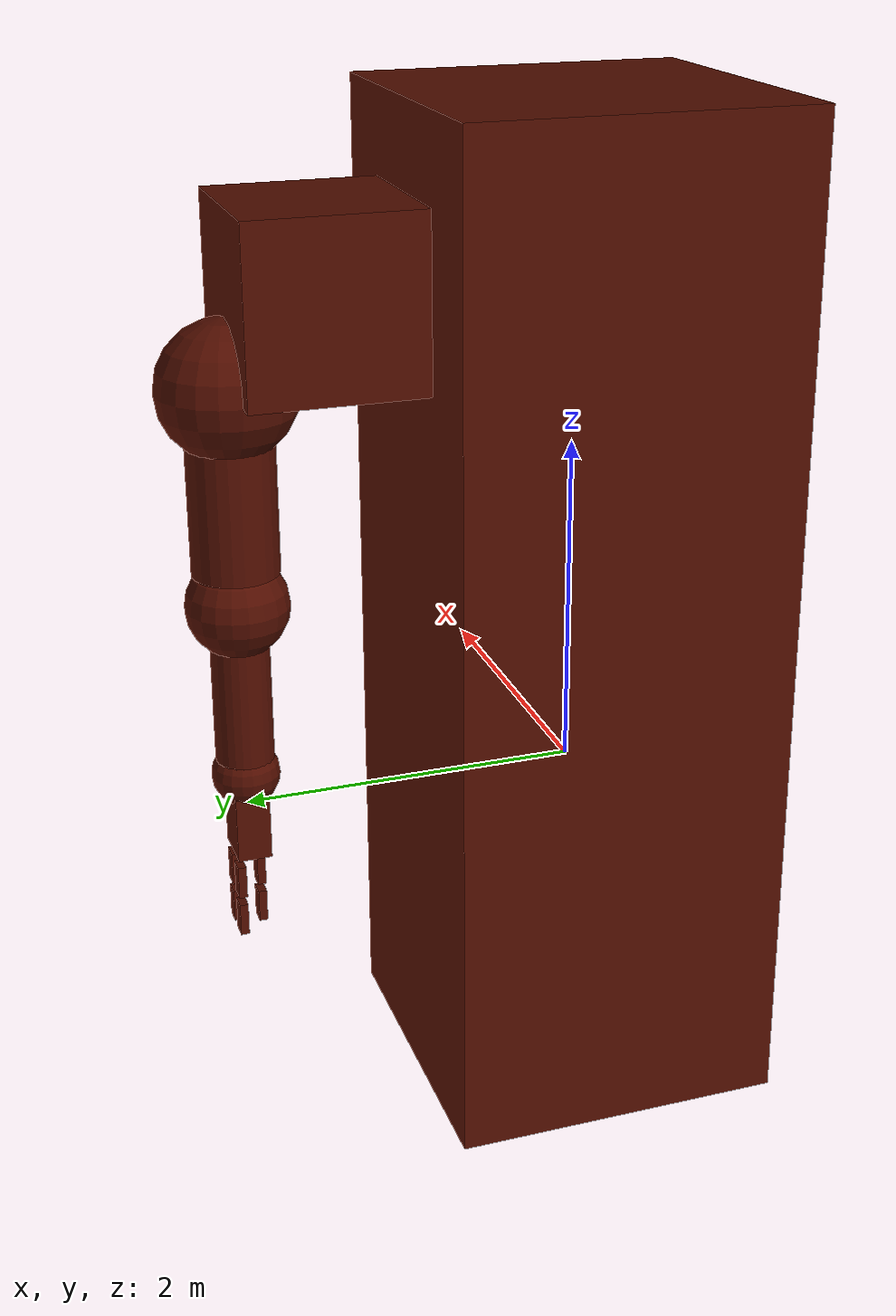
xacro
<?xml version="1.0"?>
<robot name="rm" xmlns:xacro="http://www.ros.org/wiki/xacro">

    <xacro:include filename="$(find robot_arm)/urdf/jl.xacro"/>
    <xacro:include filename="$(find robot_arm)/urdf/lp.xacro"/>
    <xacro:include filename="$(find robot_arm)/urdf/materials.xacro"/>

    <!-- Baza -->
    <xacro:x_link_box name="${l00}"
    origin_xyz="0 0 1"  origin_rpy="0 0 0"
    mass = "4800" size="2 2 6"
    ixx="16000" iyy="16000" izz="3200" iyz="0" ixy="0" ixz="0"
    material="Rust"
    />

    <!-- Barka, przód tył -->
    <xacro:x_joint name="Shoulder_01" type="revolute"
    axis="0 1 0"    limit_low="-2.97"   limit_up="0.87" limit_eff="20000"  limit_vel="0.5"
    origin_xyz="0 0 3"    origin_rpy="0 0 0"
    parent="${l00}"  child="${l01}"/>

    <transmission name="trans_Shoulder_01">
        <type>transmission_interface/SimpleTransmission</type>
        <joint name="Shoulder_01">
            <hardwareInterface>hardware_interface/EffortJointInterface</hardwareInterface>
        </joint>
        <actuator name="motor_Shoulder_01">
            <hardwareInterface>hardware_interface/EffortJointInterface</hardwareInterface>
            <mechanicalReduction>1</mechanicalReduction>
        </actuator>
    </transmission>

    <xacro:x_link_box name="${l01}"
    origin_xyz="0 1.5 0"  origin_rpy="0 0 0"
    mass = "250" size="1 1 1"
    ixx="42" iyy="42" izz="42" iyz="0" ixy="0" ixz="0"
    material="Rust" />

    <!-- Barka, od siebie do siebie -->
    <xacro:x_joint name="Shoulder_02" type="revolute"
    axis="1 0 0"    limit_low="-0.35"   limit_up="1.6" limit_eff="20000"    limit_vel="0.5"
    origin_xyz="0 2 -0.5"    origin_rpy="0 0 0"
    parent="${l01}"  child="${l02}"/>

    <transmission name="trans_Shoulder_02">
        <type>transmission_interface/SimpleTransmission</type>
        <joint name="Shoulder_02">
            <hardwareInterface>hardware_interface/EffortJointInterface</hardwareInterface>
        </joint>
        <actuator name="Shoulder_02">
            <hardwareInterface>hardware_interface/EffortJointInterface</hardwareInterface>
            <mechanicalReduction>1</mechanicalReduction>
        </actuator>
    </transmission>

    <xacro:x_link_ball name="${l02}"
    origin_xyz="0 0 0" origin_rpy="0 0 0"
    mass = "150" radius="0.4" coll_rad="0.13"
    ixx="9.6" iyy="9.6" izz="9.6" iyz="0"  ixy="0" ixz="0"
    material="Rust" />

    <!-- Ramię, martwy joint -->
    <xacro:x_joint name="Arm_01" type="revolute"
    axis="0 0 1"    limit_low="0"   limit_up="0" limit_eff="10000"    limit_vel="0.5"
    origin_xyz="0 0 -0.55"    origin_rpy="0 0 0"
    parent="${l02}"  child="${l03}"/>

    <transmission name="trans_Arm_01">
        <type>transmission_interface/SimpleTransmission</type>
        <joint name="Arm_01">
            <hardwareInterface>hardware_interface/EffortJointInterface</hardwareInterface>
        </joint>
        <actuator name="motor_Arm_01">
            <hardwareInterface>hardware_interface/EffortJointInterface</hardwareInterface>
            <mechanicalReduction>1</mechanicalReduction>
        </actuator>
    </transmission>

    <xacro:x_link_cylinder name="${l03}"
    origin_xyz="0 0 0" origin_rpy="0 0 0"
    mass = "120" radius="0.25" coll_rad="0.06" length="1"
    ixx="10" iyy="10" izz="3.125" iyz="0"  ixy="0" ixz="0"
    material="Rust" />

    <!-- Łokieć, rotacja -->
    <xacro:x_joint name="Arm_02" type="revolute"
    axis="0 0 1"    limit_low="-1.6"   limit_up="1.60" limit_eff="10000"    limit_vel="0.5"
    origin_xyz="0 0 -0.7"    origin_rpy="0 0 0"
    parent="${l03}"  child="${l04}"/>

    <transmission name="trans_Arm_02">
        <type>transmission_interface/SimpleTransmission</type>
        <joint name="Arm_02">
            <hardwareInterface>hardware_interface/EffortJointInterface</hardwareInterface>
        </joint>
        <actuator name="motor_Arm_02">
            <hardwareInterface>hardware_interface/EffortJointInterface</hardwareInterface>
            <mechanicalReduction>1</mechanicalReduction>
        </actuator>
    </transmission>

    <xacro:x_link_ball name="${l04}"
    origin_xyz="0 0 0" origin_rpy="0 0 0"
    mass = "40" radius="0.3" coll_rad="0.1"
    ixx="1.44" iyy="1.44" izz="1.44" iyz="0" ixy="0" ixz="0"
    material="Rust" />

    <!-- Łokieć, zgięcie-->
    <xacro:x_joint name="Arm_03" type="revolute"
    axis="0 1 0"    limit_low="-2.62"   limit_up="0" limit_eff="20000"    limit_vel="0.5"
    origin_xyz="0 0 0"    origin_rpy="0 0 0"
    parent="${l04}"  child="${l05}"/>

    <transmission name="trans_Arm_03">
        <type>transmission_interface/SimpleTransmission</type>
        <joint name="Arm_03">
            <hardwareInterface>hardware_interface/EffortJointInterface</hardwareInterface>
        </joint>
        <actuator name="motor_Arm_03">
            <hardwareInterface>hardware_interface/EffortJointInterface</hardwareInterface>
            <mechanicalReduction>1</mechanicalReduction>
        </actuator>
    </transmission>

    <xacro:x_link_cylinder name="${l05}"
    origin_xyz="0 0 -0.6" origin_rpy="0 0 0"
    mass = "20" radius="0.17" coll_rad="0.04" length="0.75"
    ixx="3" iyy="3" izz="0.5" iyz="0" ixy="0" ixz="0"
    material="Rust" />

    <!-- Nadgarstek, góra dół -->
    <xacro:x_joint name="Wrist" type="revolute"
    axis="1 0 0"    limit_low="-1.05"   limit_up="0.87" limit_eff="10000"    limit_vel="0.5"
    origin_xyz="0 0 -1"    origin_rpy="0 0 0"
    parent="${l05}"  child="${l06}"/>

    <transmission name="trans_Wrist">
        <type>transmission_interface/SimpleTransmission</type>
        <joint name="Wrist">
            <hardwareInterface>hardware_interface/EffortJointInterface</hardwareInterface>
        </joint>
        <actuator name="motor_Wrist">
            <hardwareInterface>hardware_interface/EffortJointInterface</hardwareInterface>
            <mechanicalReduction>1</mechanicalReduction>
        </actuator>
    </transmission>

    <xacro:x_link_ball name="${l06}"
    origin_xyz="0 0 -0.05" origin_rpy="0 0 0"
    mass = "4" radius="0.20" coll_rad="0.06"
    ixx="0.064" iyy="0.064" izz="0.064" iyz="0" ixy="0" ixz="0"
    material="Rust" />

    <!-- Nadgarstek, rotacyjny -->
    <xacro:x_joint name="Hand" type="revolute"
    axis="0 0 1"    limit_low="-1.62"   limit_up="1.52" limit_eff="10000"    limit_vel="0.5"
    origin_xyz="0 0 -0.1"    origin_rpy="0 0 0"
    parent="${l06}"  child="${l07}"/>

    <transmission name="trans_Hand">
        <type>transmission_interface/SimpleTransmission</type>
        <joint name="Hand">
            <hardwareInterface>hardware_interface/EffortJointInterface</hardwareInterface>
        </joint>
        <actuator name="motor_Hand">
            <hardwareInterface>hardware_interface/EffortJointInterface</hardwareInterface>
            <mechanicalReduction>1</mechanicalReduction>
        </actuator>
    </transmission>

    <xacro:x_link_box name="${l07}"
    origin_xyz="0 0 -0.25"  origin_rpy="0 0 0"
    mass = "10" size="0.3 0.2 0.4"
    ixx="0.21" iyy="0.11" izz="0.18" iyz="0"  ixy="0" ixz="0"
    material="Rust" />

     <!-- Palec wskazujący A -->
    <xacro:x_joint name="Finger_01_A" type="revolute"
    axis="1 0 0"    limit_low="-1.57"   limit_up="0.52" limit_eff="10000"    limit_vel="0.5"
    origin_xyz="0.08 0.08 -0.5"    origin_rpy="0 0 0"
    parent="${l07}"  child="${l08}"/>

    <transmission name="trans_Finger_01_A">
        <type>transmission_interface/SimpleTransmission</type>
        <joint name="Finger_01_A">
            <hardwareInterface>hardware_interface/EffortJointInterface</hardwareInterface>
        </joint>
        <actuator name="motor_Finger_01_A">
            <hardwareInterface>hardware_interface/EffortJointInterface</hardwareInterface>
            <mechanicalReduction>1</mechanicalReduction>
        </actuator>
    </transmission>

    <xacro:x_link_box name="${l08}"
    origin_xyz="0 0 -0.1" origin_rpy="0 0 0"
    mass = "4" size="0.1 0.05 0.2"
    ixx="0" iyy="0" izz="0" iyz="0" ixy="0" ixz="0"
    material="Rust" />

    <!-- Palec wskazujący B -->
    <xacro:x_joint name="Finger_01_B" type="revolute"
    axis="1 0 0"    limit_low="-2.27"   limit_up="0" limit_eff="10000"    limit_vel="0.5"
    origin_xyz="0 0 -0.25"    origin_rpy="0 0 0"
    parent="${l08}"  child="${l11}"/>

    <transmission name="trans_Finger_01_B">
        <type>transmission_interface/SimpleTransmission</type>
        <joint name="Finger_01_B">
            <hardwareInterface>hardware_interface/EffortJointInterface</hardwareInterface>
        </joint>
        <actuator name="motor_Finger_01_B">
            <hardwareInterface>hardware_interface/EffortJointInterface</hardwareInterface>
            <mechanicalReduction>1</mechanicalReduction>
        </actuator>
    </transmission>

    <xacro:x_link_box name="${l11}"
    origin_xyz="0 0 -0.1" origin_rpy="0 0 0"
    mass = "4" size="0.1 0.05 0.2"
    ixx="0" iyy="0" izz="0" iyz="0" ixy="0" ixz="0"
    material="Rust" />

   <!--  Palec serdeczny A -->
    <xacro:x_joint name="Finger_02_A" type="revolute"
    axis="1 0 0"    limit_low="-1.57"   limit_up="0.52" limit_eff="10000"    limit_vel="0.5"
    origin_xyz="0.08 0.08 -0.5"    origin_rpy="0 0 0"
    parent="${l07}"  child="${l09}"/>

    <transmission name="trans_Finger_02_A">
        <type>transmission_interface/SimpleTransmission</type>
        <joint name="Finger_02_A">
            <hardwareInterface>hardware_interface/EffortJointInterface</hardwareInterface>
        </joint>
        <actuator name="motor_Finger_02_A">
            <hardwareInterface>hardware_interface/EffortJointInterface</hardwareInterface>
            <mechanicalReduction>1</mechanicalReduction>
        </actuator>
    </transmission>

    <xacro:x_link_box name="${l09}"
    origin_xyz="-0.17 0 -0.1" origin_rpy="0 0 0"
    mass = "4"  size="0.1 0.05 0.2"
    ixx="0" iyy="0" izz="0" iyz="0" ixy="0" ixz="0"
    material="Rust" />

     <!-- Palec serdeczny B -->
    <xacro:x_joint name="Finger_02_B" type="revolute"
    axis="1 0 0"    limit_low="-2.27"   limit_up="0" limit_eff="10000"    limit_vel="0.5"
    origin_xyz="-0.17 0 -0.25"    origin_rpy="0 0 0"
    parent="${l09}"  child="${l12}"/>

    <transmission name="trans_Finger_02_B">
        <type>transmission_interface/SimpleTransmission</type>
        <joint name="Finger_02_B">
            <hardwareInterface>hardware_interface/EffortJointInterface</hardwareInterface>
        </joint>
        <actuator name="motor_Finger_02_B">
            <hardwareInterface>hardware_interface/EffortJointInterface</hardwareInterface>
            <mechanicalReduction>1</mechanicalReduction>
        </actuator>
    </transmission>

    <xacro:x_link_box name="${l12}"
    origin_xyz="0 0 -0.1" origin_rpy="0 0 0"
    mass = "4" size="0.1 0.05 0.2"
    ixx="0" iyy="0" izz="0" iyz="0" ixy="0" ixz="0"
    material="Rust" />

    <!--  Palec kciuk A -->
    <xacro:x_joint name="Finger_03_A" type="revolute"
    axis="1 0 0"    limit_low="-0.7"   limit_up="1.57" limit_eff="10000"    limit_vel="0.5"
    origin_xyz="0.08 -0.06 -0.5"    origin_rpy="0 0 0"
    parent="${l07}"  child="${l10}"/>

    <transmission name="trans_Finger_03_A">
        <type>transmission_interface/SimpleTransmission</type>
        <joint name="Finger_03_A">
            <hardwareInterface>hardware_interface/EffortJointInterface</hardwareInterface>
        </joint>
        <actuator name="motor_Finger_03_A">
            <hardwareInterface>hardware_interface/EffortJointInterface</hardwareInterface>
            <mechanicalReduction>1</mechanicalReduction>
        </actuator>
    </transmission>

    <xacro:x_link_box name="${l10}"
    origin_xyz="-0.05 0 -0.1" origin_rpy="0 0 0"
    mass = "4"  size="0.1 0.05 0.2"
    ixx="0" iyy="0" izz="0" iyz="0" ixy="0" ixz="0"
    material="Rust" />

     <!-- Palec kciuk B -->
    <xacro:x_joint name="Finger_03_B" type="revolute"
    axis="1 0 0"    limit_low="0"   limit_up="1.6" limit_eff="10000"    limit_vel="0.5"
    origin_xyz="0 0 -0.25"    origin_rpy="0 0 0"
    parent="${l10}"  child="${l13}"/>

    <transmission name="trans_Finger_03_B">
        <type>transmission_interface/SimpleTransmission</type>
        <joint name="Finger_03_B">
            <hardwareInterface>hardware_interface/EffortJointInterface</hardwareInterface>
        </joint>
        <actuator name="motor_Finger_03_B">
            <hardwareInterface>hardware_interface/EffortJointInterface</hardwareInterface>
            <mechanicalReduction>1</mechanicalReduction>
        </actuator>
    </transmission>

    <xacro:x_link_box name="${l13}"
    origin_xyz="-0.05 0 -0.1" origin_rpy="0 0 0"
    mass = "4" size="0.1 0.05 0.2"
    ixx="0" iyy="0" izz="0" iyz="0" ixy="0" ixz="0"
    material="Rust" />

    <!-- Plugin -->
    <gazebo>
        <plugin name="gazebo_ros_control" filename="libgazebo_ros_control.so">
            <robotNamespace>/rm</robotNamespace>
        </plugin>
    </gazebo>

</robot>

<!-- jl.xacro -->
<robot xmlns:xacro="http://www.ros.org/wiki/xacro">

    <!-- Staw -->
    <xacro:macro name="x_joint" params="name type axis origin_rpy origin_xyz parent child limit_low limit_up limit_eff limit_vel">
        <joint name="${name}" type="${type}">
            <axis xyz="${axis}"/>
            <limit lower="${limit_low}" upper="${limit_up}" effort="${limit_eff}" velocity="${limit_vel}"/>
            <origin xyz="${origin_xyz}" rpy="${origin_rpy}"/>
            <parent link="${parent}"/>
            <child link="${child}"/>
        </joint>
    </xacro:macro>

    <!-- Cylinder -->
    <xacro:macro name="x_link_cylinder" params="name origin_xyz origin_rpy radius coll_rad length mass ixx ixy ixz iyy iyz izz material">
        <link name="${name}">
            <inertial>
                <mass value="${mass}"/>
                <origin xyz="${origin_xyz}" rpy="${origin_rpy}"/>
                <inertia ixx="${ixx}" ixy="${ixy}" ixz="${ixz}" iyy="${iyy}" iyz="${iyz}" izz="${izz}"/>
            </inertial>
            <collision>
                <origin xyz="${origin_xyz}" rpy="${origin_rpy}"/>
                <geometry>
                    <cylinder radius="${coll_rad}" length="${length}"/>
                </geometry>
            </collision>
            <visual>
                <origin xyz="${origin_xyz}" rpy="${origin_rpy}"/>
                <geometry>
                    <cylinder radius="${radius}" length="${length}"/>
                </geometry>
                <material name="${material}"/>
            </visual>
        </link>
    </xacro:macro>

    <!-- Prostopadłościan -->
    <xacro:macro name="x_link_box" params="name origin_xyz origin_rpy size mass ixx ixy ixz iyy iyz izz material">
        <link name="${name}">
            <inertial>
                <mass value="${mass}"/>
                <origin xyz="${origin_xyz}" rpy="${origin_rpy}"/>
                <inertia ixx="${ixx}" ixy="${ixy}" ixz="${ixz}" iyy="${iyy}" iyz="${iyz}" izz="${izz}"/>
            </inertial>
            <collision>
               <origin xyz="${origin_xyz}" rpy="${origin_rpy}"/>
                <geometry>
                    <box size="${size}"/>
                </geometry>
            </collision>
            <visual>
                <origin xyz="${origin_xyz}" rpy="${origin_rpy}"/>
                <geometry>
                    <box size="${size}"/>
                </geometry>
                <material name="${material}"/>
            </visual>
        </link>
    </xacro:macro>

    <!-- Sfera -->
    <xacro:macro name="x_link_ball" params="name origin_xyz origin_rpy radius coll_rad mass ixx ixy ixz iyy iyz izz material">
        <link name="${name}">
            <inertial>
                <mass value="${mass}"/>
                    <origin xyz="${origin_xyz}" rpy="${origin_rpy}"/>
                <inertia ixx="${ixx}" ixy="${ixy}" ixz="${ixz}" iyy="${iyy}" iyz="${iyz}" izz="${izz}"/>
            </inertial>
            <collision>
                <origin xyz="${origin_xyz}" rpy="${origin_rpy}"/>
                <geometry>
                    <sphere radius="${coll_rad}"/>
                </geometry>
            </collision>
            <visual>
                <origin xyz="${origin_xyz}" rpy="${origin_rpy}"/>
                <geometry>
                    <sphere radius="${radius}"/>
                </geometry>
                <material name="${material}"/>
            </visual>
        </link>
    </xacro:macro>

</robot>

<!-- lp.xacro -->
<robot xmlns:xacro="http://www.ros.org/wiki/xacro">
    <xacro:property name="l00" value="base_link"/>
    <xacro:property name="l01" value="link_01"/>
    <xacro:property name="l02" value="link_02"/>
    <xacro:property name="l03" value="link_03"/>
    <xacro:property name="l04" value="link_04"/>
    <xacro:property name="l05" value="link_05"/>
    <xacro:property name="l06" value="link_06"/>
    <xacro:property name="l07" value="link_07"/>
    <xacro:property name="l08" value="link_08"/>
    <xacro:property name="l09" value="link_09"/>
    <xacro:property name="l10" value="link_10"/>
    <xacro:property name="l11" value="link_11"/>
    <xacro:property name="l12" value="link_12"/>
    <xacro:property name="l13" value="link_13"/>
    <xacro:property name="l14" value="link_14"/>
    <xacro:property name="l15" value="link_15"/>
    <xacro:property name="l16" value="link_16"/>
</robot>

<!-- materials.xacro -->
<robot xmlns:xacro="http://www.ros.org/wiki/xacro">

    <!-- Kolory z URDF -->
    <material name="Rust">
        <color rgba="${82/255} ${13/255} ${0/255} 1.0"/>
    </material>

    <!-- Kolory z SDF -->
    <gazebo reference="base_link">
        <visual>
          <material>
            <ambient>0.322 0.051 0.0 1.0</ambient>
            <diffuse>0.322 0.051 0.0 1.0</diffuse>
            <specular>0.322 0.051 0.0 1.0</specular>
            <emissive>0.322 0.051 0.0 1.0</emissive>
          </material>
        </visual>
    </gazebo>

    <gazebo reference="link_01">
        <visual>
          <material>
            <ambient>0.322 0.051 0.0 1.0</ambient>
            <diffuse>0.322 0.051 0.0 1.0</diffuse>
            <specular>0.322 0.051 0.0 1.0</specular>
            <emissive>0.322 0.051 0.0 1.0</emissive>
          </material>
        </visual>
    </gazebo>

    <gazebo reference="link_02">
        <visual>
          <material>
            <ambient>0.322 0.051 0.0 1.0</ambient>
            <diffuse>0.322 0.051 0.0 1.0</diffuse>
            <specular>0.322 0.051 0.0 1.0</specular>
            <emissive>0.322 0.051 0.0 1.0</emissive>
          </material>
        </visual>
    </gazebo>

    <gazebo reference="link_03">
        <visual>
          <material>
            <ambient>0.322 0.051 0.0 1.0</ambient>
            <diffuse>0.322 0.051 0.0 1.0</diffuse>
            <specular>0.322 0.051 0.0 1.0</specular>
            <emissive>0.322 0.051 0.0 1.0</emissive>
          </material>
        </visual>
    </gazebo>

    <gazebo reference="link_04">
        <visual>
          <material>
            <ambient>0.322 0.051 0.0 1.0</ambient>
            <diffuse>0.322 0.051 0.0 1.0</diffuse>
            <specular>0.322 0.051 0.0 1.0</specular>
            <emissive>0.322 0.051 0.0 1.0</emissive>
          </material>
        </visual>
    </gazebo>

    <gazebo reference="link_05">
        <visual>
          <material>
            <ambient>0.322 0.051 0.0 1.0</ambient>
            <diffuse>0.322 0.051 0.0 1.0</diffuse>
            <specular>0.322 0.051 0.0 1.0</specular>
            <emissive>0.322 0.051 0.0 1.0</emissive>
          </material>
        </visual>
    </gazebo>

    <gazebo reference="link_06">
        <visual>
          <material>
            <ambient>0.322 0.051 0.0 1.0</ambient>
            <diffuse>0.322 0.051 0.0 1.0</diffuse>
            <specular>0.322 0.051 0.0 1.0</specular>
            <emissive>0.322 0.051 0.0 1.0</emissive>
          </material>
        </visual>
    </gazebo>

    <gazebo reference="link_07">
        <visual>
          <material>
            <ambient>0.322 0.051 0.0 1.0</ambient>
            <diffuse>0.322 0.051 0.0 1.0</diffuse>
            <specular>0.322 0.051 0.0 1.0</specular>
            <emissive>0.322 0.051 0.0 1.0</emissive>
          </material>
        </visual>
    </gazebo>

    <gazebo reference="link_08">
        <visual>
          <material>
            <ambient>0.322 0.051 0.0 1.0</ambient>
            <diffuse>0.322 0.051 0.0 1.0</diffuse>
            <specular>0.322 0.051 0.0 1.0</specular>
            <emissive>0.322 0.051 0.0 1.0</emissive>
          </material>
        </visual>
    </gazebo>

    <gazebo reference="link_09">
        <visual>
          <material>
            <ambient>0.322 0.051 0.0 1.0</ambient>
            <diffuse>0.322 0.051 0.0 1.0</diffuse>
            <specular>0.322 0.051 0.0 1.0</specular>
            <emissive>0.322 0.051 0.0 1.0</emissive>
          </material>
        </visual>
    </gazebo>

    <gazebo reference="link_10">
        <visual>
          <material>
            <ambient>0.322 0.051 0.0 1.0</ambient>
            <diffuse>0.322 0.051 0.0 1.0</diffuse>
            <specular>0.322 0.051 0.0 1.0</specular>
            <emissive>0.322 0.051 0.0 1.0</emissive>
          </material>
        </visual>
    </gazebo>

    <gazebo reference="link_11">
        <visual>
          <material>
            <ambient>0.322 0.051 0.0 1.0</ambient>
            <diffuse>0.322 0.051 0.0 1.0</diffuse>
            <specular>0.322 0.051 0.0 1.0</specular>
            <emissive>0.322 0.051 0.0 1.0</emissive>
          </material>
        </visual>
    </gazebo>

    <gazebo reference="link_12">
        <visual>
          <material>
            <ambient>0.322 0.051 0.0 1.0</ambient>
            <diffuse>0.322 0.051 0.0 1.0</diffuse>
            <specular>0.322 0.051 0.0 1.0</specular>
            <emissive>0.322 0.051 0.0 1.0</emissive>
          </material>
        </visual>
    </gazebo>

    <gazebo reference="link_13">
        <visual>
          <material>
            <ambient>0.322 0.051 0.0 1.0</ambient>
            <diffuse>0.322 0.051 0.0 1.0</diffuse>
            <specular>0.322 0.051 0.0 1.0</specular>
            <emissive>0.322 0.051 0.0 1.0</emissive>
          </material>
        </visual>
    </gazebo>

    <gazebo reference="link_14">
        <visual>
          <material>
            <ambient>0.322 0.051 0.0 1.0</ambient>
            <diffuse>0.322 0.051 0.0 1.0</diffuse>
            <specular>0.322 0.051 0.0 1.0</specular>
            <emissive>0.322 0.051 0.0 1.0</emissive>
          </material>
        </visual>
    </gazebo>

    <gazebo reference="link_15">
        <visual>
          <material>
            <ambient>0.322 0.051 0.0 1.0</ambient>
            <diffuse>0.322 0.051 0.0 1.0</diffuse>
            <specular>0.322 0.051 0.0 1.0</specular>
            <emissive>0.322 0.051 0.0 1.0</emissive>
          </material>
        </visual>
    </gazebo>

    <gazebo reference="link_16">
        <visual>
          <material>
            <ambient>0.322 0.051 0.0 1.0</ambient>
            <diffuse>0.322 0.051 0.0 1.0</diffuse>
            <specular>0.322 0.051 0.0 1.0</specular>
            <emissive>0.322 0.051 0.0 1.0</emissive>
          </material>
        </visual>
    </gazebo>

</robot>
